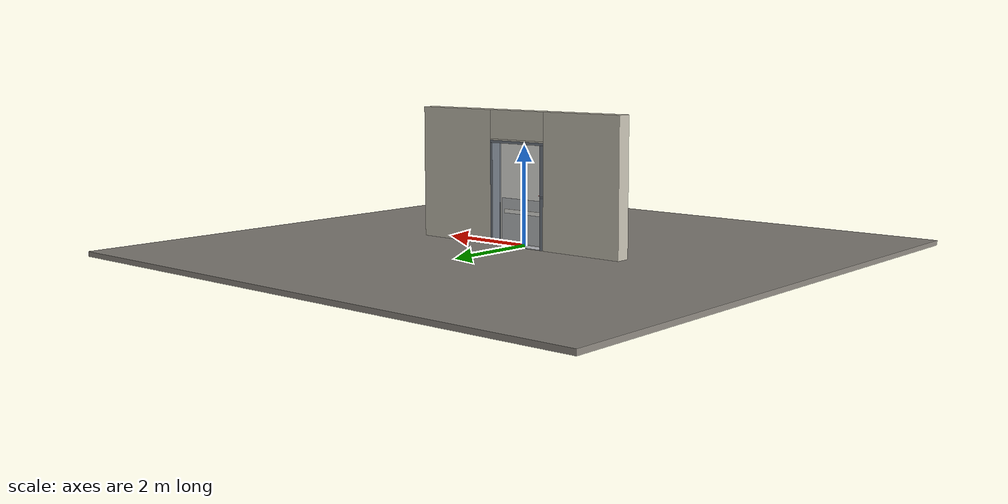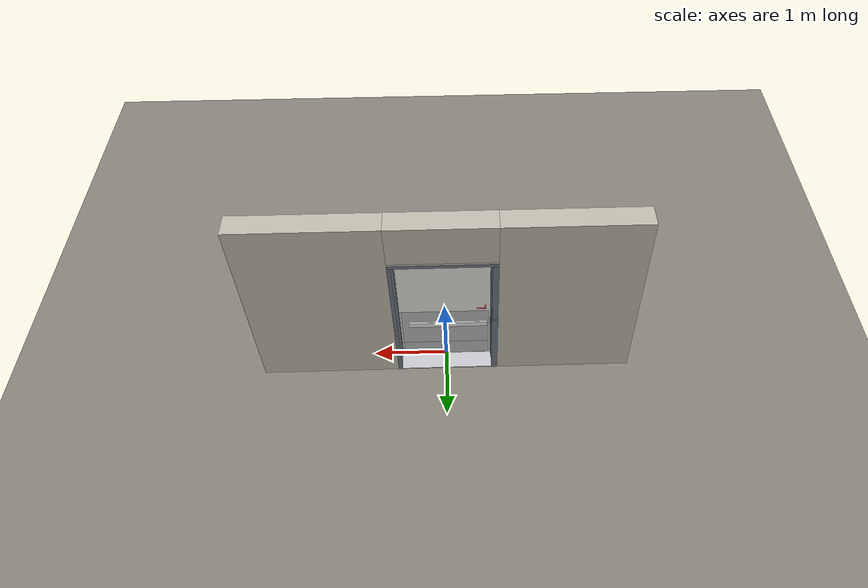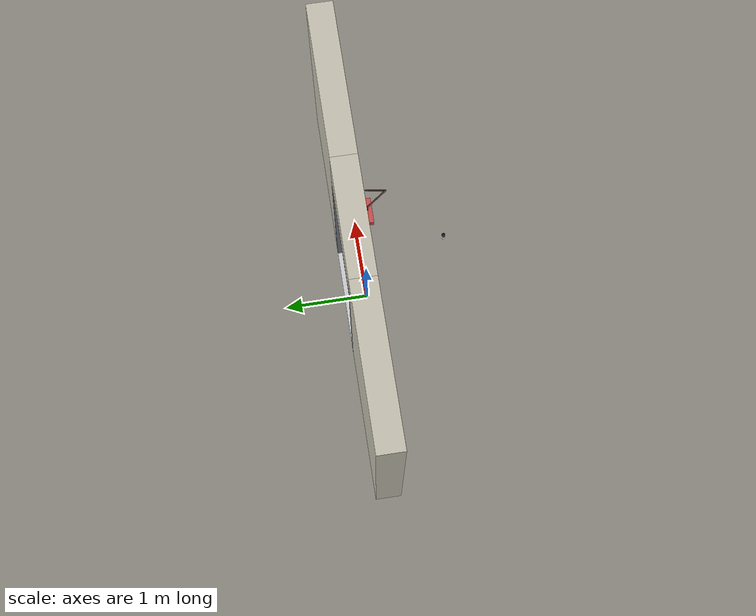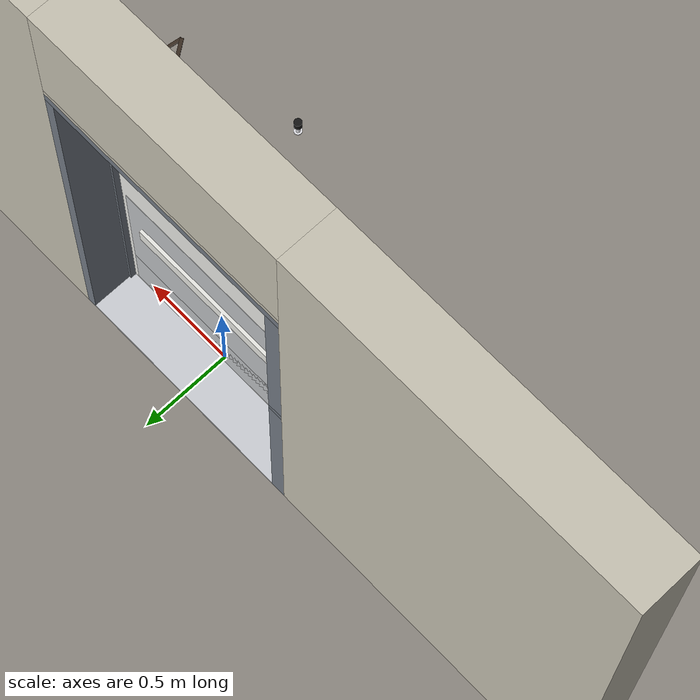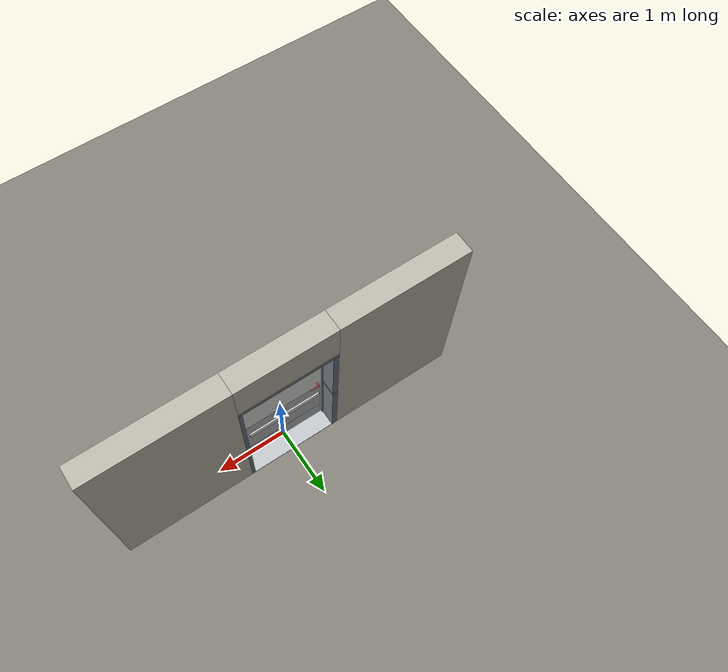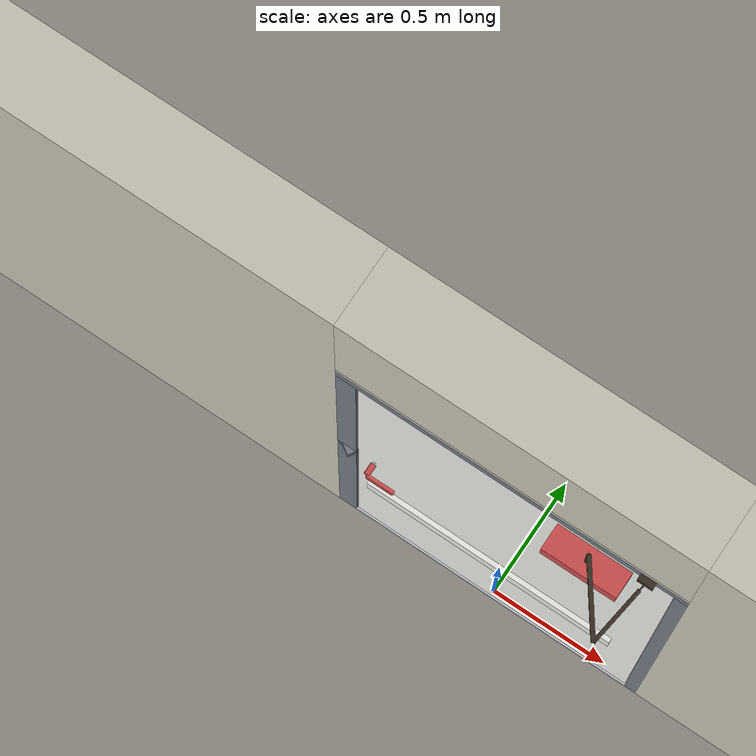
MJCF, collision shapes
<?xml version="1.0" ?>
<mujoco model="db0676_swing_single_full">
  <compiler angle="radian" meshdir="../../hardware" texturedir="../../textures" autolimits="true" inertiafromgeom="false"/>
  <option timestep="0.002" integrator="implicitfast" cone="elliptic" impratio="10" noslip_iterations="3">
    <flag multiccd="enable"/>
  </option>
  <size memory="16M"/>
  <default>
    <geom condim="4" solref="0.005 1" solimp="0.95 0.99 0.001"/>
    <joint solreflimit="0.005 1" solimplimit="0.95 0.99 0.001"/>
    <tendon solreflimit="0.005 1"/>
    <equality solref="0.002 1"/>
  </default>
  <visual>
    <headlight ambient="0.4 0.4 0.4" diffuse="0.7 0.7 0.7" specular="0.2 0.2 0.2"/>
    <quality shadowsize="4096"/>
    <map znear="0.01" zfar="60"/>
  </visual>
  <asset>
    <mesh name="closer_body_fdc4667657" file="closer_body_fdc4667657.obj"/>
    <mesh name="hinge_1cb808d647" file="hinge_1cb808d647.obj"/>
    <mesh name="hinge_jamb_7842e12854" file="hinge_jamb_7842e12854.obj"/>
    <mesh name="lever_6268dcb28c" file="lever_6268dcb28c.obj"/>
    <material name="mat_floor" rgba="0.55 0.53 0.5 1" specular="0.2" shininess="0.15" reflectance="0"/>
    <material name="mat_wall" rgba="0.78 0.76 0.7 1" specular="0.2" shininess="0.1" reflectance="0"/>
    <material name="mat_leaf" rgba="0.93 0.93 0.91 1" specular="0.2" shininess="0.58" reflectance="0"/>
    <material name="mat_hinge" rgba="0.65 0.66 0.68 1" specular="0.74" shininess="0.5" reflectance="0.36"/>
    <material name="mat_op_stainless" rgba="0.75 0.76 0.77 1" specular="0.8" shininess="0.65" reflectance="0.4"/>
    <material name="mat_trim" rgba="0.85 0.66 0.3 1" specular="0.8" shininess="0.75" reflectance="0.4"/>
    <material name="mat_bolt" rgba="0.85 0.66 0.3 1" specular="0.8" shininess="0.75" reflectance="0.4"/>
    <material name="mat_frame" rgba="0.45 0.48 0.52 1" specular="0.32" shininess="0.6" reflectance="0.08"/>
    <material name="mat_seal" rgba="0.1 0.1 0.1 1" specular="0.2" shininess="0.1" reflectance="0"/>
    <material name="mat_threshold" rgba="0.8 0.81 0.83 1" specular="0.8" shininess="0.6" reflectance="0.4"/>
    <material name="mat_closer" rgba="0.22 0.17 0.13 1" specular="0.8" shininess="0.6" reflectance="0.4"/>
    <material name="mat_kick" rgba="0.75 0.76 0.77 1" specular="0.8" shininess="0.65" reflectance="0.4"/>
    <material name="mat_bumper" rgba="0.92 0.92 0.9 1" specular="0.2" shininess="0.6" reflectance="0"/>
    <material name="mat_bumper_stop" rgba="0.08 0.08 0.08 1" specular="0.2" shininess="0.1" reflectance="0"/>
    <material name="mat_stop_base" rgba="0.9 0.9 0.92 1" specular="0.8" shininess="0.9" reflectance="0.4"/>
    <texture name="skybox" type="skybox" builtin="gradient" rgb1="0.6 0.7 0.85" rgb2="0.9 0.92 0.95" width="256" height="256"/>
  </asset>
  <worldbody>
    <light name="sun" pos="1.5 -2.5 4" dir="-0.3 0.5 -0.8" directional="true" diffuse="0.8 0.8 0.8" specular="0.3 0.3 0.3" castshadow="true"/>
    <light name="fill" pos="-1.5 2.5 3" dir="0.3 -0.5 -0.7" directional="true" diffuse="0.35 0.35 0.4" castshadow="false"/>
    <camera name="robot_view" pos="0 -2.421187 1.734312" xyaxes="1 0 0 0 0.26963 0.962964" fovy="52"/>
    <camera name="far_view" pos="0 2.663187 1.734312" xyaxes="-1 0 0 0 -0.26963 0.962964" fovy="52"/>
    <camera name="iso" pos="-1.932062 -2.014438 2.141063" xyaxes="0.741536 -0.670913 0 0.242917 0.268487 0.932151" fovy="46"/>
    <camera name="detail_handle" pos="-0.263 -0.877 1.32" xyaxes="0.97561 0.219512 0 -0.070934 0.315262 0.94635" fovy="38"/>
    <geom name="floor" type="box" size="6 6 0.05" pos="0 0 -0.05" material="mat_floor" group="0" contype="1" conaffinity="1" friction="0.8 0.005 0.0001" density="2400"/>
    <geom name="wall_left" type="box" size="0.9035 0.15 1.35" pos="-1.5965 0.121 1.35" material="mat_wall" group="0" contype="1" conaffinity="1" friction="0.6 0.005 0.0001" density="800"/>
    <geom name="wall_right" type="box" size="0.9185 0.15 1.35" pos="1.5815 0.121 1.35" material="mat_wall" group="0" contype="1" conaffinity="1" friction="0.6 0.005 0.0001" density="800"/>
    <geom name="wall_header" type="box" size="0.678 0.15 0.2875" pos="-0.015 0.121 2.4125" material="mat_wall" group="0" contype="1" conaffinity="1" friction="0.6 0.005 0.0001" density="800"/>
    <geom name="hinge_0_jamb" type="mesh" mesh="hinge_jamb_7842e12854" pos="0.61 -0.029 0.267" quat="0 0 1 0" material="mat_hinge" group="1" contype="0" conaffinity="0" density="7850"/>
    <geom name="hinge_1_jamb" type="mesh" mesh="hinge_jamb_7842e12854" pos="0.61 -0.029 1.029" quat="0 0 1 0" material="mat_hinge" group="1" contype="0" conaffinity="0" density="7850"/>
    <geom name="hinge_2_jamb" type="mesh" mesh="hinge_jamb_7842e12854" pos="0.61 -0.029 1.861" quat="0 0 1 0" material="mat_hinge" group="1" contype="0" conaffinity="0" density="7850"/>
    <geom name="jamb_hinge" type="box" size="0.025 0.15 1.0225" pos="0.638 0.121 1.0225" material="mat_frame" group="0" contype="1" conaffinity="1" friction="0.6 0.005 0.0001" density="300"/>
    <geom name="strike_1040_wall_n" type="box" size="0.04 0.13075 0.0183" pos="-0.653 0.14025 1.04" material="mat_frame" group="0" contype="1" conaffinity="1" friction="0.6 0.005 0.0001" density="300"/>
    <geom name="strike_1040_wall_p" type="box" size="0.04 0.008 0.0183" pos="-0.653 -0.0175 1.04" material="mat_frame" group="0" contype="1" conaffinity="1" friction="0.6 0.005 0.0001" density="300"/>
    <geom name="strike_1040_ramp" type="box" size="0.04 0.018028 0.0183" pos="-0.656282 -0.018312 1.04" quat="0.957092 0 0 -0.289784" material="mat_frame" group="0" contype="1" conaffinity="1" friction="0.12 0.005 0.0001" density="300"/>
    <geom name="strike_1040_back" type="box" size="0.0285 0.0095 0.0183" pos="-0.6645 0 1.04" material="mat_frame" group="0" contype="1" conaffinity="1" friction="0.6 0.005 0.0001" density="300"/>
    <geom name="jamb_strike_0" type="box" size="0.04 0.15 0.51085" pos="-0.653 0.121 0.51085" material="mat_frame" group="0" contype="1" conaffinity="1" friction="0.6 0.005 0.0001" density="300"/>
    <geom name="jamb_strike_1" type="box" size="0.04 0.15 0.49335" pos="-0.653 0.121 1.55165" material="mat_frame" group="0" contype="1" conaffinity="1" friction="0.6 0.005 0.0001" density="300"/>
    <geom name="jamb_head" type="box" size="0.678 0.15 0.025" pos="-0.015 0.121 2.07" material="mat_frame" group="0" contype="1" conaffinity="1" friction="0.6 0.005 0.0001" density="300"/>
    <geom name="head_stud" type="box" size="0.678 0.15 0.015" pos="-0.015 0.121 2.11" material="mat_wall" group="0" contype="1" conaffinity="1" friction="0.6 0.005 0.0001" density="500"/>
    <geom name="stop_hinge" type="box" size="0.0055 0.016 1.0225" pos="0.6075 0.0385 1.0225" material="mat_frame" group="0" contype="1" conaffinity="1" friction="0.6 0.005 0.0001" density="300"/>
    <geom name="stop_strike" type="box" size="0.0055 0.016 1.0225" pos="-0.6075 0.0385 1.0225" material="mat_frame" group="0" contype="1" conaffinity="1" friction="0.6 0.005 0.0001" density="300"/>
    <geom name="stop_head" type="box" size="0.613 0.016 0.0055" pos="0 0.0385 2.0395" material="mat_frame" group="0" contype="1" conaffinity="1" friction="0.6 0.005 0.0001" density="300"/>
    <geom name="seal_hinge" type="box" size="0.004 0.004 1.0225" pos="0.61 0.026 1.0225" material="mat_seal" group="1" contype="0" conaffinity="0" density="1100"/>
    <geom name="seal_strike" type="box" size="0.004 0.004 1.0225" pos="-0.61 0.026 1.0225" material="mat_seal" group="1" contype="0" conaffinity="0" density="1100"/>
    <geom name="seal_head" type="box" size="0.593 0.004 0.008" pos="0 0.026 2.033" material="mat_seal" group="1" contype="0" conaffinity="0" density="1100"/>
    <geom name="threshold" type="box" size="0.663 0.15 0.0065" pos="0 0.121 0.0065" material="mat_threshold" group="0" contype="1" conaffinity="1" friction="0.5 0.005 0.0001" density="2700"/>
    <geom name="closer_bracket" type="box" size="0.03 0.012 0.014" pos="0.513 -0.041 2.075" material="mat_closer" group="1" contype="0" conaffinity="0" density="2700"/>
    <geom name="door_stop_base" type="cylinder" size="0.022 0.003" pos="0.626 -1.06515 0.003" material="mat_stop_base" group="0" contype="1" conaffinity="1" friction="0.6 0.005 0.0001" density="7850"/>
    <geom name="door_stop_post" type="cylinder" size="0.012 0.0255" pos="0.626 -1.06515 0.0315" material="mat_stop_base" group="0" contype="1" conaffinity="1" friction="0.6 0.005 0.0001" density="7850"/>
    <geom name="door_stop_bumper" type="cylinder" size="0.022 0.02" pos="0.626 -1.06515 0.077" material="mat_bumper_stop" group="0" contype="1" conaffinity="1" friction="0.6 0.005 0.0001" density="1100"/>
    <site name="approach_point" pos="0 -1.5 0" quat="1 0 0 0" size="0.05" rgba="0.2 0.9 0.2 0.5" group="4"/>
    <site name="goal_point" pos="0 1.5 0" quat="1 0 0 0" size="0.05" rgba="0.2 0.9 0.2 0.5" group="4"/>
    <site name="door_plane_center" pos="0 0 1.0225" quat="1 0 0 0" size="0.02" rgba="0.2 0.9 0.2 0.5" group="4"/>
    <body name="leaf" pos="0.613 0 0">
      <inertial pos="-0.571812 -0.00584 1.042161" mass="93.57861" quat="0.531312 -0.526189 -0.45986 -0.478917" diaginertia="10.735748767 39.152859317 49.764450273"/>
      <joint name="leaf_hinge" type="hinge" axis="0 0 1" pos="-0.003 -0.029 0" limited="true" range="0 1.570796" solreflimit="0.02 1" damping="12.810319" frictionloss="3.939355" stiffness="18.767551" springref="-2.188352" armature="0.02"/>
      <geom name="leaf_slab" type="box" size="0.6095 0.022 1.012" pos="-0.6125 0 1.029" material="mat_leaf" group="0" contype="1" conaffinity="1" friction="0.35 0.005 0.0001" density="1"/>
      <geom name="hinge_0" type="mesh" mesh="hinge_1cb808d647" pos="-0.003 -0.029 0.267" quat="0 0 1 0" material="mat_hinge" group="1" contype="0" conaffinity="0" density="7850"/>
      <geom name="hinge_1" type="mesh" mesh="hinge_1cb808d647" pos="-0.003 -0.029 1.029" quat="0 0 1 0" material="mat_hinge" group="1" contype="0" conaffinity="0" density="7850"/>
      <geom name="hinge_2" type="mesh" mesh="hinge_1cb808d647" pos="-0.003 -0.029 1.861" quat="0 0 1 0" material="mat_hinge" group="1" contype="0" conaffinity="0" density="7850"/>
      <geom name="leaf_latch_bolt_faceplate" type="box" size="0.0006 0.014 0.0283" pos="-1.2214 0 1.04" material="mat_bolt" group="1" contype="0" conaffinity="0" density="8500"/>
      <geom name="closer_body" type="mesh" mesh="closer_body_fdc4667657" pos="-0.3 -0.022 1.944" quat="0 0 -0.707107 0.707107" material="mat_closer" group="1" contype="0" conaffinity="0" density="2000"/>
      <geom name="closer_body_col" type="box" size="0.145 0.05 0.035" pos="-0.3 -0.072 1.944" material="mat_closer" group="3" contype="1" conaffinity="1" rgba="0.8 0.3 0.3 0.25" friction="0.6 0.005 0.0001" density="2000"/>
      <geom name="closer_pinion_shaft" type="cylinder" size="0.008 0.0655" pos="-0.3 -0.072 2.0095" material="mat_closer" group="1" contype="0" conaffinity="0" density="2700"/>
      <geom name="kick_plate_p" type="box" size="0.5795 0.0008 0.125" pos="-0.6125 0.0228 0.152" material="mat_kick" group="2" contype="0" conaffinity="0" density="7900"/>
      <geom name="armor_plate" type="box" size="0.5795 0.0008 0.45" pos="-0.6125 0.0228 0.477" material="mat_kick" group="2" contype="0" conaffinity="0" density="7900"/>
      <geom name="bumper_rail_n" type="box" size="0.5245 0.01 0.04" pos="-0.6475 -0.032 0.667" material="mat_bumper" group="0" contype="1" conaffinity="1" friction="0.6 0.005 0.0001" density="1200"/>
      <geom name="bumper_rail_p" type="box" size="0.5245 0.01 0.04" pos="-0.6475 0.032 0.667" material="mat_bumper" group="0" contype="1" conaffinity="1" friction="0.6 0.005 0.0001" density="1200"/>
      <site name="leaf_edge_mid" pos="-1.222 0 1.012" quat="1 0 0 0" size="0.02" rgba="0.2 0.9 0.2 0.5" group="4"/>
      <body name="leaf_handle" pos="-1.152 0 1.04">
        <inertial pos="0.035149 0 0" mass="1.038236" quat="0.707107 0 0 -0.707107" diaginertia="0.002348364 0.00382535 0.005606687"/>
        <joint name="leaf_handle_hinge" type="hinge" axis="0 1 0" limited="true" range="0 0.96" damping="0.255791" frictionloss="0.05" stiffness="1.2" springref="-0.583333" armature="0.01"/>
        <geom name="leaf_handle_spindle" type="cylinder" size="0.006 0.03" pos="0 0 0" quat="0.707107 -0.707107 0 0" material="mat_op_stainless" group="1" contype="0" conaffinity="0" density="7850"/>
        <geom name="leaf_handle_lever_n" type="mesh" mesh="lever_6268dcb28c" pos="0 -0.022 0" quat="0 0 -0.707107 0.707107" material="mat_op_stainless" group="1" contype="0" conaffinity="0" density="3000"/>
        <geom name="leaf_handle_lever_col_n" type="capsule" size="0.0095 0.0505" pos="0.06 -0.077 0" quat="0.707107 0 0.707107 0" material="mat_op_stainless" group="3" contype="1" conaffinity="1" rgba="0.8 0.3 0.3 0.25" friction="0.7 0.01 0.0001" density="3000"/>
        <geom name="leaf_handle_hub_col_n" type="cylinder" size="0.012 0.022" pos="0 -0.052 0" quat="0.707107 -0.707107 0 0" material="mat_op_stainless" group="3" contype="1" conaffinity="1" rgba="0.8 0.3 0.3 0.25" friction="0.6 0.005 0.0001" density="3000"/>
        <geom name="leaf_handle_lever_p" type="mesh" mesh="lever_6268dcb28c" pos="0 0.022 0" quat="0 0 0.707107 0.707107" material="mat_op_stainless" group="1" contype="0" conaffinity="0" density="3000"/>
        <geom name="leaf_handle_lever_col_p" type="capsule" size="0.0095 0.0505" pos="0.06 0.077 0" quat="0.707107 0 0.707107 0" material="mat_op_stainless" group="3" contype="1" conaffinity="1" rgba="0.8 0.3 0.3 0.25" friction="0.7 0.01 0.0001" density="3000"/>
        <geom name="leaf_handle_hub_col_p" type="cylinder" size="0.012 0.022" pos="0 0.052 0" quat="0.707107 -0.707107 0 0" material="mat_op_stainless" group="3" contype="1" conaffinity="1" rgba="0.8 0.3 0.3 0.25" friction="0.6 0.005 0.0001" density="3000"/>
        <site name="leaf_handle_grip_n" pos="0.096 -0.077 0" quat="1 0 0 0" size="0.012" rgba="0.2 0.9 0.2 0.5" group="4"/>
        <site name="leaf_handle_grip_p" pos="0.096 0.077 0" quat="1 0 0 0" size="0.012" rgba="0.2 0.9 0.2 0.5" group="4"/>
      </body>
      <body name="leaf_latch_bolt" pos="-1.222 0 1.04">
        <inertial pos="0.0055 0 0" mass="0.074627" quat="0.92388 0.382683 0 0" diaginertia="0.000002271 0.000013255 0.000013255"/>
        <joint name="leaf_latch_bolt_slide" type="slide" axis="1 0 0" limited="true" range="0 0.019" damping="2" frictionloss="0.3" stiffness="600" springref="-0.01" armature="0.1"/>
        <geom name="leaf_latch_bolt_capsule" type="capsule" size="0.008 0.0165" pos="0.0055 0 0" quat="0.707107 0 -0.707107 0" material="mat_bolt" group="0" contype="1" conaffinity="1" friction="0.2 0.005 0.0001" density="8500"/>
      </body>
      <body name="closer_arm_main" pos="-0.3 -0.072 2.075" quat="0.890947 0 0 -0.454107">
        <inertial pos="0.14 0 0" mass="0.12096" quat="1 0 0 0" diaginertia="0.000003588 0.00079128 0.000792852"/>
        <joint name="closer_pinion" type="hinge" axis="0 0 1" limited="false" damping="0.01" armature="0.002"/>
        <geom name="closer_arm_main_geom" type="box" size="0.14 0.008 0.005" pos="0.14 0 0" material="mat_closer" group="1" contype="0" conaffinity="0" density="2700"/>
        <body name="closer_arm_fore" pos="0.28 0 0" quat="0.373215 0 0 0.927745">
          <inertial pos="0.128088 0 0" mass="0.076531" quat="1 0 0 0" diaginertia="0.000001771 0.000437665 0.000438201"/>
          <joint name="closer_elbow" type="hinge" axis="0 0 1" limited="false" damping="0.01" armature="0.002"/>
          <geom name="closer_arm_fore_geom" type="box" size="0.1125 0.007 0.004" pos="0.1125 0 0" material="mat_closer" group="1" contype="0" conaffinity="0" density="2700"/>
          <geom name="closer_fore_neck" type="box" size="0.0175 0.003 0.003" pos="0.2425 0 0" material="mat_closer" group="1" contype="0" conaffinity="0" density="2700"/>
          <geom name="closer_fore_pivot" type="cylinder" size="0.005 0.012" pos="0.26 0 0" material="mat_closer" group="1" contype="0" conaffinity="0" density="2700"/>
        </body>
      </body>
    </body>
  </worldbody>
  <tendon>
    <fixed name="leaf_latch_bolt_coupling" limited="true" range="0 10">
      <joint joint="leaf_latch_bolt_slide" coef="1"/>
      <joint joint="leaf_handle_hinge" coef="-0.020879"/>
    </fixed>
  </tendon>
  <equality>
    <connect name="closer_arm_connect" body1="closer_arm_fore" body2="world" anchor="0.26 0 0" active="true"/>
  </equality>
  <contact>
    <exclude body1="closer_arm_main" body2="leaf"/>
    <exclude body1="closer_arm_fore" body2="leaf"/>
    <exclude body1="closer_arm_main" body2="closer_arm_fore"/>
  </contact>
  <sensor>
    <jointpos name="leaf_hinge_pos" joint="leaf_hinge"/>
    <jointvel name="leaf_hinge_vel" joint="leaf_hinge"/>
    <jointpos name="leaf_handle_hinge_pos" joint="leaf_handle_hinge"/>
    <jointvel name="leaf_handle_hinge_vel" joint="leaf_handle_hinge"/>
    <jointpos name="leaf_latch_bolt_slide_pos" joint="leaf_latch_bolt_slide"/>
    <jointvel name="leaf_latch_bolt_slide_vel" joint="leaf_latch_bolt_slide"/>
  </sensor>
</mujoco>
